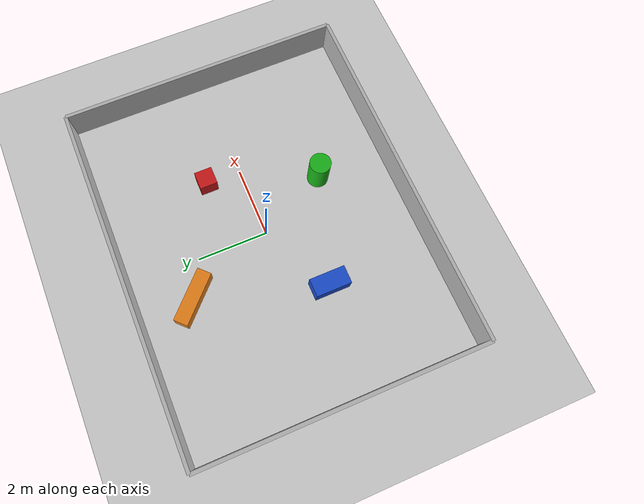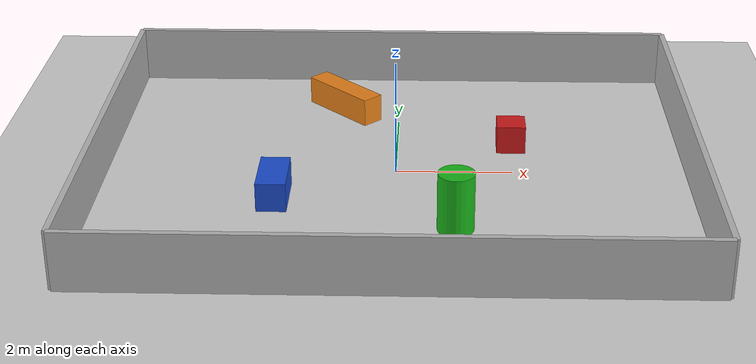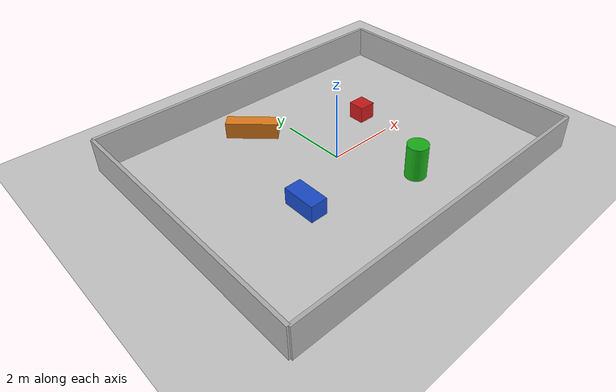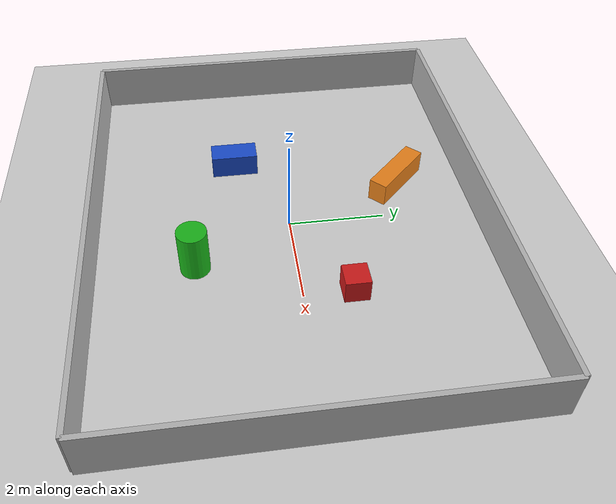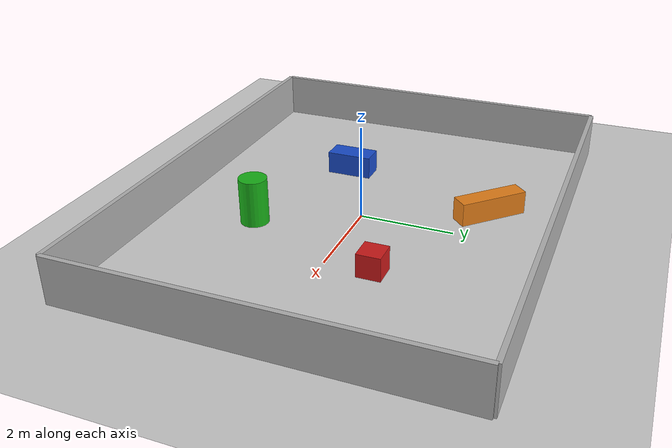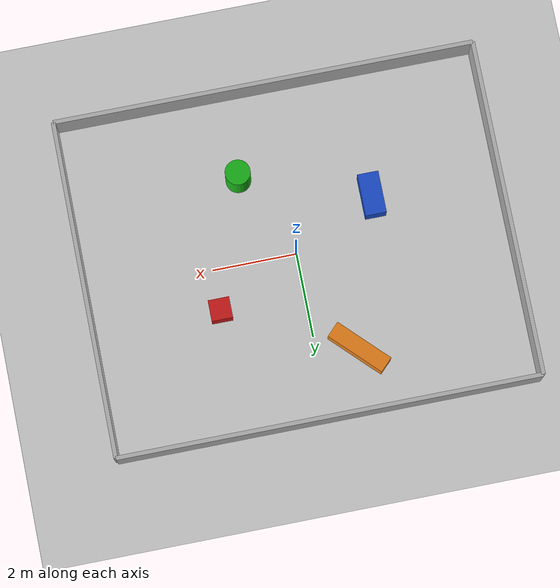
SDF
<?xml version="1.0"?>
<sdf version="1.6">
  <world name="obstacle_world">

    <include><uri>model://sun</uri></include>
    <include><uri>model://ground_plane</uri></include>

    <!-- North wall -->
    <model name="wall_north"><static>true</static><pose>0 4 0.5 0 0 0</pose>
      <link name="link">
        <collision name="c"><geometry><box><size>10 0.1 1</size></box></geometry></collision>
        <visual name="v"><geometry><box><size>10 0.1 1</size></box></geometry>
          <material><ambient>0.7 0.7 0.7 1</ambient></material></visual>
      </link></model>

    <!-- South wall -->
    <model name="wall_south"><static>true</static><pose>0 -4 0.5 0 0 0</pose>
      <link name="link">
        <collision name="c"><geometry><box><size>10 0.1 1</size></box></geometry></collision>
        <visual name="v"><geometry><box><size>10 0.1 1</size></box></geometry>
          <material><ambient>0.7 0.7 0.7 1</ambient></material></visual>
      </link></model>

    <!-- East wall -->
    <model name="wall_east"><static>true</static><pose>5 0 0.5 0 0 1.5708</pose>
      <link name="link">
        <collision name="c"><geometry><box><size>8 0.1 1</size></box></geometry></collision>
        <visual name="v"><geometry><box><size>8 0.1 1</size></box></geometry>
          <material><ambient>0.7 0.7 0.7 1</ambient></material></visual>
      </link></model>

    <!-- West wall -->
    <model name="wall_west"><static>true</static><pose>-5 0 0.5 0 0 1.5708</pose>
      <link name="link">
        <collision name="c"><geometry><box><size>8 0.1 1</size></box></geometry></collision>
        <visual name="v"><geometry><box><size>8 0.1 1</size></box></geometry>
          <material><ambient>0.7 0.7 0.7 1</ambient></material></visual>
      </link></model>

    <!-- Red box obstacle -->
    <model name="box_1"><static>true</static><pose>2 1 0.25 0 0 0</pose>
      <link name="link">
        <collision name="c"><geometry><box><size>0.5 0.5 0.5</size></box></geometry></collision>
        <visual name="v"><geometry><box><size>0.5 0.5 0.5</size></box></geometry>
          <material><ambient>0.8 0.1 0.1 1</ambient></material></visual>
      </link></model>

    <!-- Blue tall box -->
    <model name="box_2"><static>true</static><pose>-2 -1 0.25 0 0 0</pose>
      <link name="link">
        <collision name="c"><geometry><box><size>0.5 1.0 0.5</size></box></geometry></collision>
        <visual name="v"><geometry><box><size>0.5 1.0 0.5</size></box></geometry>
          <material><ambient>0.1 0.3 0.8 1</ambient></material></visual>
      </link></model>

    <!-- Green cylinder -->
    <model name="cylinder_1"><static>true</static><pose>1 -2 0.5 0 0 0</pose>
      <link name="link">
        <collision name="c"><geometry><cylinder><radius>0.3</radius><length>1.0</length></cylinder></geometry></collision>
        <visual name="v"><geometry><cylinder><radius>0.3</radius><length>1.0</length></cylinder></geometry>
          <material><ambient>0.1 0.7 0.1 1</ambient></material></visual>
      </link></model>

    <!-- Orange diagonal wall -->
    <model name="box_3"><static>true</static><pose>-1 2.5 0.25 0 0 0.785</pose>
      <link name="link">
        <collision name="c"><geometry><box><size>0.4 1.5 0.5</size></box></geometry></collision>
        <visual name="v"><geometry><box><size>0.4 1.5 0.5</size></box></geometry>
          <material><ambient>0.9 0.5 0.1 1</ambient></material></visual>
      </link></model>

  </world>
</sdf>
